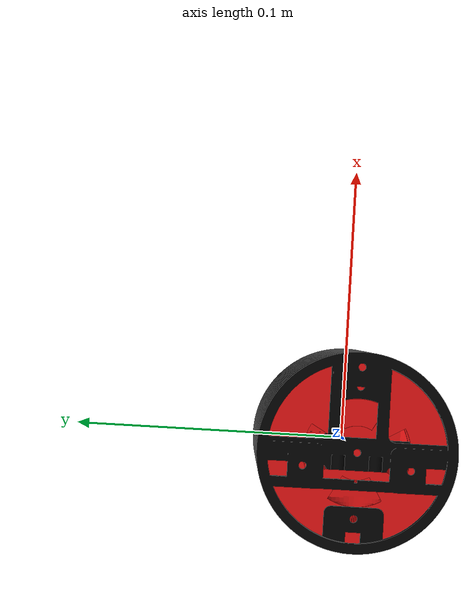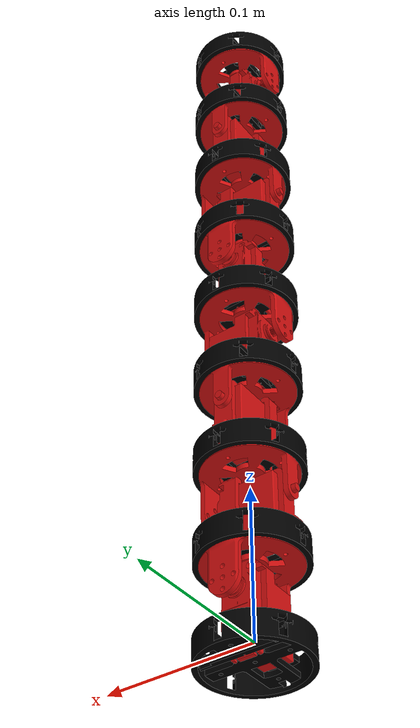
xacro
<?xml version="1.0"?>

<robot xmlns:xacro="http://www.ros.org/wiki/xacro" name="snake">

  <!-- *************************** XACRO MACROS *************************** -->
  <xacro:property name="PI" value="3.1415926535897931" />

  <!-- load macros for modules -->
  <xacro:include filename="./module_common.xacro"/>
  <xacro:include filename="./rotary_module.xacro"/>

  <!-- ************************* ROBOT DEFINITION ************************* -->

  <xacro:property name="S_00" value="link_01" />
  <xacro:property name="S_01" value="link_02" />
  <xacro:property name="S_02" value="link_03" />
  <xacro:property name="S_03" value="link_04" />
  <xacro:property name="S_04" value="link_05" />
  <xacro:property name="S_05" value="link_06" />
  <xacro:property name="S_06" value="link_07" />
  <xacro:property name="S_07" value="link_08" />
  <link name="dummy_root" />
  <joint name="dummy_root_to_base" type="fixed">
    <parent link="dummy_root"/>
    <child link="base"/>
    <origin xyz="0 0 0" rpy="0 0 0"/>
  </joint>

  <link name="base" />
  <joint name="head__OUTPUT_INTERFACE" type="fixed">
    <parent link="base"/>
    <child link="${S_00}__INPUT_INTERFACE"/>
  </joint>
  <xacro:include filename="./snake.gazebo" />
  <xacro:rotary_module joint="${S_00}" child="${S_01}"/>
  <xacro:rotary_module joint="${S_01}" child="${S_02}"/>
  <xacro:rotary_module joint="${S_02}" child="${S_03}"/>
  <xacro:rotary_module joint="${S_03}" child="${S_04}"/>
  <xacro:rotary_module joint="${S_04}" child="${S_05}"/>
  <xacro:rotary_module joint="${S_05}" child="${S_06}"/>
  <xacro:rotary_module joint="${S_06}" child="${S_07}"/>
  <xacro:rotary_module_in name="${S_07}__INPUT_INTERFACE"/>
  <xacro:collar parent="${S_07}__INPUT_INTERFACE"/>
  <xacro:rotary_module_joint parent="${S_07}__INPUT_INTERFACE" name="${S_07}" child="${S_07}__OUTPUT_BODY"/>
  <xacro:rotary_module_out name="${S_07}__OUTPUT_BODY"/>
  <xacro:end parent="${S_07}__OUTPUT_BODY"/>

  <!-- ********************** Arboc attempt ********************** -->
</robot>

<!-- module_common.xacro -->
<robot xmlns:xacro="http://www.ros.org/wiki/xacro">
  <xacro:property name="PI" value="3.1415926535897931" />
  <!-- define macros for colors: -->
  <xacro:macro name="red_material">
    <material name="red">
      <color rgba=".82 0.06 0.06 1"/>
    </material>
  </xacro:macro>
  <xacro:macro name="silver_material">
    <material name="silver">
      <color rgba="0.6 0.6 0.6 1"/>
    </material>
  </xacro:macro>
  <xacro:macro name="black_material">
    <material name="black">
      <color rgba="0 0 0 1"/>
    </material>
  </xacro:macro>
  <xacro:macro name="fluorescent_material">
    <material name="fluorescent">
      <color rgba="0.8 1 0 1"/>
    </material>
  </xacro:macro>

  <!-- define collar element macro -->
  <xacro:macro name="collar" params="parent">
    <link name="${parent}__COLLAR">
      <visual>
        <origin xyz="0 0.0004965 -0.0065" rpy="${PI/2.0} ${PI} ${PI}" />
        <geometry>
          <mesh filename="package://snake_control/meshes/collar.dae"/>
        </geometry>
        <xacro:black_material/>
      </visual>
    </link>
    <joint name="${parent}__COLLAR_JOINT" type="fixed">
      <parent link="${parent}"/>
      <child link="${parent}__COLLAR"/>
    </joint>
  </xacro:macro>

  <xacro:macro name="end" params="parent">
    <link name="${parent}__COLLAR_END">
      <visual>
        <origin xyz="0 0.0004965 +0.03" rpy="${PI/2.0} ${PI} ${PI}" />
        <geometry>
          <mesh filename="package://snake_control/meshes/collar.dae"/>
        </geometry>
        <xacro:black_material/>
      </visual>
    </link>
    <joint name="${parent}__COLLAR_JOINT" type="fixed">
      <parent link="${parent}"/>
      <child link="${parent}__COLLAR_END"/>
    </joint>
  </xacro:macro>
</robot>

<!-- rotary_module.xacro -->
<robot xmlns:xacro="http://www.ros.org/wiki/xacro">
  <xacro:property name="PI" value="3.1415926535897931" />
  <xacro:property name="mass_2" value="0.093195" />
  <xacro:property name="cyl_r" value="0.0335" />
  <xacro:property name="cyl_h_in" value="0.03" />
  <xacro:property name="cyl_h_out" value="0.03" />

  <xacro:macro name="rotary_module_in" params="name">
    <link name="${name}">
      <visual>
	      <origin xyz="0 -0.00235 0.019" rpy="${-PI/2.0} 0 0" />
        <geometry>
          <mesh filename="package://snake_control/meshes/rotary_module_in.dae"/>
        </geometry>
        <xacro:red_material/>
      </visual>
    <collision>
      <origin xyz="0 0 0" rpy="0 0 0" />
      <geometry>
	<cylinder radius="${cyl_r}" length="${cyl_h_in}" />
      </geometry>
    </collision>
    <inertial>
      <origin xyz="0 0 0" rpy="0 0 0" />
      <mass value="${mass_2}"/>
      <inertia ixx="${mass_2/12.0*(3*cyl_r**2+cyl_h_in**2)+mass_2*(cyl_h_in/2.0)**2}" iyy="${mass_2/12.0*(3*cyl_r**2+cyl_h_in**2)+mass_2*(cyl_h_in/2.0)**2}" izz="${mass_2/2.0*cyl_r**2}" ixy="0" ixz="0" iyz="0" />
    </inertial>
    </link>
  </xacro:macro>

  <xacro:macro name="rotary_module_joint" params="parent name child">

    <joint name="${name}" type="revolute">
      <parent link="${parent}"/>
      <child link="${child}"/>
      <origin xyz="0 0 0.02575" rpy="0 0 0"/>
      <axis xyz="0 1 0"/>
      <dynamics damping=".1" friction="0.2"/>
      <limit effort="7.0" lower="-1.57" upper="1.57" velocity="2.208932"/>
    </joint>

    <transmission name="${name}_trans">
      <type>transmission_interface/SimpleTransmission</type>
      <joint name="${name}">
	<hardwareInterface>EffortJointInterface</hardwareInterface>
      </joint>
      <actuator name="${name}_motor">
	<hardwareInterface>EffortJointInterface</hardwareInterface>
	<mechanicalReduction>300</mechanicalReduction>
      </actuator>
    </transmission>

  </xacro:macro>

  <xacro:macro name="rotary_module_out" params="name">
    <link name="${name}">
      <visual>
        <origin xyz="0 0.00225 0.0179" rpy="${-PI/2.0} 0 0" />
        <geometry>
          <mesh filename="package://snake_control/meshes/rotary_module_out.dae"/>
        </geometry>
        <xacro:red_material/>
      </visual>
    <collision>
      <origin xyz="0 0 0" rpy="0 0 0" />
      <geometry>
	<cylinder radius="${cyl_r}" length="${cyl_h_out}" />
      </geometry>
    </collision>
    <inertial>
      <origin xyz="0 0 0" rpy="0 0 0" />
      <mass value="${mass_2}"/>
      <inertia ixx="${mass_2/12.0*(3*cyl_r**2+cyl_h_out**2)+mass_2*(cyl_h_out/2.0)**2}" iyy="${mass_2/12.0*(3*cyl_r**2+cyl_h_out**2)+mass_2*(cyl_h_out/2.0)**2}" izz="${mass_2/2.0*cyl_r**2}" ixy="0" ixz="0" iyz="0" />
    </inertial>
    </link>
  </xacro:macro>

  <xacro:macro name="rotary_module_out_interface" params="parent name child">
    <joint name="${name}" type="fixed">
      <parent link="${parent}"/>
      <child link="${child}"/>
      <origin xyz="0 0 0.036" rpy="0 0 -1.57075"/>
    </joint>
  </xacro:macro>

  <!-- NOTE: joint must match the name of the module -->
  <xacro:macro name="rotary_module" params="joint child">
    <!-- first half of joint + collar -->
    <xacro:rotary_module_in name="${joint}__INPUT_INTERFACE"/>
    <xacro:collar parent="${joint}__INPUT_INTERFACE"/>
    <!-- actual rotary joint component: -->
    <xacro:rotary_module_joint parent="${joint}__INPUT_INTERFACE" name="${joint}" child="${joint}__OUTPUT_BODY"/>
    <!-- second half of joint -->
    <xacro:rotary_module_out name="${joint}__OUTPUT_BODY"/>
    <!-- 90* turn at interface: -->
    <xacro:rotary_module_out_interface parent="${joint}__OUTPUT_BODY" name="${joint}__OUTPUT_INTERFACE" child="${child}__INPUT_INTERFACE"/>
  </xacro:macro>
</robot>
